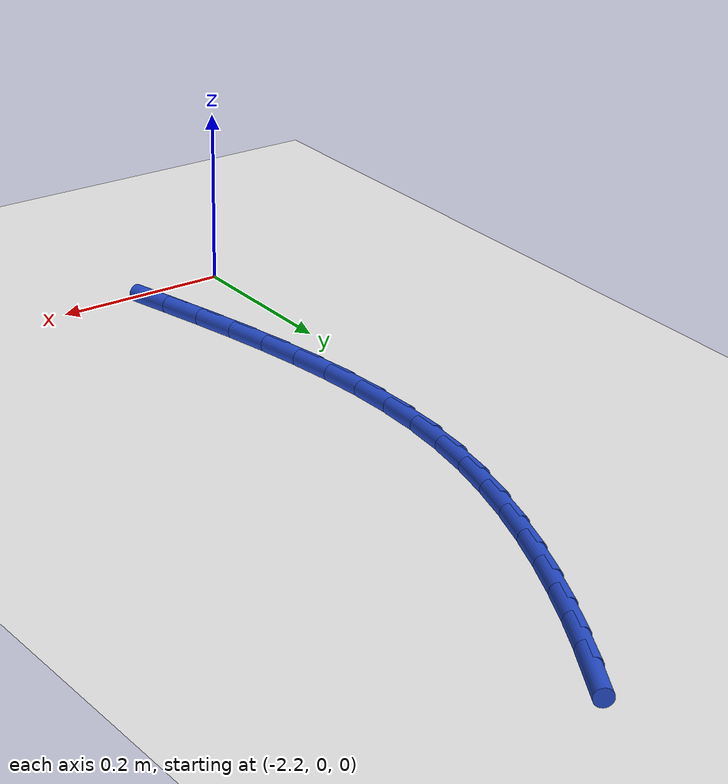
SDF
<sdf version="1.6">
 <world name="default">
  <model name="ground_plane">
   <static>1</static>
   <link name="link">
    <collision name="collision">
     <geometry><plane><normal>0 0 1</normal><size>100 100</size></plane></geometry>
     <surface><friction><ode><mu>100</mu><mu2>50</mu2></ode></friction></surface>
    </collision>
    <visual name="visual">
     <cast_shadows>0</cast_shadows>
     <geometry><plane><normal>0 0 1</normal><size>100 100</size></plane></geometry>
     <material>
      <script><uri>file://media/materials/scripts/gazebo.material</uri><name>Gazebo/WhiteGlow</name></script>
     </material>
    </visual>
   </link>
  </model>
  <model name="line">
   <link name="link_57">
    <pose>-1.9884132734650395 0.9450249430834553 0.01 0 1.57 1.0767185622705102</pose>
    <collision name="collision">
     <geometry><cylinder><radius>0.01</radius><length>0.08</length></cylinder></geometry>
    </collision>
    <visual name="visual">
     <material>
      <script><name>Gazebo/Blue</name><uri>file://media/materials/scripts/gazebo.material</uri></script>
     </material>
     <geometry><cylinder><radius>0.01</radius><length>0.08</length></cylinder></geometry>
    </visual>
   </link>
   <link name="link_58">
    <pose>-2.0123396323150073 0.9006047919943416 0.01 0 1.57 1.1065300352826224</pose>
    <collision name="collision">
     <geometry><cylinder><radius>0.01</radius><length>0.08</length></cylinder></geometry>
    </collision>
    <visual name="visual">
     <material>
      <script><name>Gazebo/Blue</name><uri>file://media/materials/scripts/gazebo.material</uri></script>
     </material>
     <geometry><cylinder><radius>0.01</radius><length>0.08</length></cylinder></geometry>
    </visual>
   </link>
   <link name="link_59">
    <pose>-2.0352388207915904 0.8548771641449224 0.01 0 1.57 1.134573228270334</pose>
    <collision name="collision">
     <geometry><cylinder><radius>0.01</radius><length>0.08</length></cylinder></geometry>
    </collision>
    <visual name="visual">
     <material>
      <script><name>Gazebo/Blue</name><uri>file://media/materials/scripts/gazebo.material</uri></script>
     </material>
     <geometry><cylinder><radius>0.01</radius><length>0.08</length></cylinder></geometry>
    </visual>
   </link>
   <link name="link_60">
    <pose>-2.05716096362098 0.807851568998694 0.01 0 1.57 1.166539977617122</pose>
    <collision name="collision">
     <geometry><cylinder><radius>0.01</radius><length>0.08</length></cylinder></geometry>
    </collision>
    <visual name="visual">
     <material>
      <script><name>Gazebo/Blue</name><uri>file://media/materials/scripts/gazebo.material</uri></script>
     </material>
     <geometry><cylinder><radius>0.01</radius><length>0.08</length></cylinder></geometry>
    </visual>
   </link>
   <link name="link_61">
    <pose>-2.077762679846535 0.7596964076877841 0.01 0 1.57 1.2031058721673062</pose>
    <collision name="collision">
     <geometry><cylinder><radius>0.01</radius><length>0.08</length></cylinder></geometry>
    </collision>
    <visual name="visual">
     <material>
      <script><name>Gazebo/Blue</name><uri>file://media/materials/scripts/gazebo.material</uri></script>
     </material>
     <geometry><cylinder><radius>0.01</radius><length>0.08</length></cylinder></geometry>
    </visual>
   </link>
   <link name="link_62">
    <pose>-2.0966794152020474 0.7105886308078588 0.01 0 1.57 1.244732987011108</pose>
    <collision name="collision">
     <geometry><cylinder><radius>0.01</radius><length>0.08</length></cylinder></geometry>
    </collision>
    <visual name="visual">
     <material>
      <script><name>Gazebo/Blue</name><uri>file://media/materials/scripts/gazebo.material</uri></script>
     </material>
     <geometry><cylinder><radius>0.01</radius><length>0.08</length></cylinder></geometry>
    </visual>
   </link>
   <link name="link_63">
    <pose>-2.113546615421306 0.6607051889545855 0.01 0 1.57 1.2919539699727254</pose>
    <collision name="collision">
     <geometry><cylinder><radius>0.01</radius><length>0.08</length></cylinder></geometry>
    </collision>
    <visual name="visual">
     <material>
      <script><name>Gazebo/Blue</name><uri>file://media/materials/scripts/gazebo.material</uri></script>
     </material>
     <geometry><cylinder><radius>0.01</radius><length>0.08</length></cylinder></geometry>
    </visual>
   </link>
   <link name="link_64">
    <pose>-2.127999726238101 0.6102230327236301 0.01 0 1.57 1.3453518433506855</pose>
    <collision name="collision">
     <geometry><cylinder><radius>0.01</radius><length>0.08</length></cylinder></geometry>
    </collision>
    <visual name="visual">
     <material>
      <script><name>Gazebo/Blue</name><uri>file://media/materials/scripts/gazebo.material</uri></script>
     </material>
     <geometry><cylinder><radius>0.01</radius><length>0.08</length></cylinder></geometry>
    </visual>
   </link>
   <link name="link_65">
    <pose>-2.139674193386225 0.5593191127106597 0.01 0 1.57 1.4055243800006232</pose>
    <collision name="collision">
     <geometry><cylinder><radius>0.01</radius><length>0.08</length></cylinder></geometry>
    </collision>
    <visual name="visual">
     <material>
      <script><name>Gazebo/Blue</name><uri>file://media/materials/scripts/gazebo.material</uri></script>
     </material>
     <geometry><cylinder><radius>0.01</radius><length>0.08</length></cylinder></geometry>
    </visual>
   </link>
   <link name="link_66">
    <pose>-2.148205462599466 0.5081703795113407 0.01 0 1.57 1.4728889256258975</pose>
    <collision name="collision">
     <geometry><cylinder><radius>0.01</radius><length>0.08</length></cylinder></geometry>
    </collision>
    <visual name="visual">
     <material>
      <script><name>Gazebo/Blue</name><uri>file://media/materials/scripts/gazebo.material</uri></script>
     </material>
     <geometry><cylinder><radius>0.01</radius><length>0.08</length></cylinder></geometry>
    </visual>
   </link>
   <link name="link_67">
    <pose>-2.1532362039150708 0.45695202099705917 0.01 0 1.57 1.541915040390049</pose>
    <collision name="collision">
     <geometry><cylinder><radius>0.01</radius><length>0.08</length></cylinder></geometry>
    </collision>
    <visual name="visual">
     <material>
      <script><name>Gazebo/Blue</name><uri>file://media/materials/scripts/gazebo.material</uri></script>
     </material>
     <geometry><cylinder><radius>0.01</radius><length>0.08</length></cylinder></geometry>
    </visual>
   </link>
   <link name="link_68">
    <pose>-2.154714973984759 0.4057645889492517 0.01 0 1.57 -1.5373398081538736</pose>
    <collision name="collision">
     <geometry><cylinder><radius>0.01</radius><length>0.08</length></cylinder></geometry>
    </collision>
    <visual name="visual">
     <material>
      <script><name>Gazebo/Blue</name><uri>file://media/materials/scripts/gazebo.material</uri></script>
     </material>
     <geometry><cylinder><radius>0.01</radius><length>0.08</length></cylinder></geometry>
    </visual>
   </link>
   <link name="link_69">
    <pose>-2.153002813381531 0.35460798940156985 0.01 0 1.57 -1.4827661530690768</pose>
    <collision name="collision">
     <geometry><cylinder><radius>0.01</radius><length>0.08</length></cylinder></geometry>
    </collision>
    <visual name="visual">
     <material>
      <script><name>Gazebo/Blue</name><uri>file://media/materials/scripts/gazebo.material</uri></script>
     </material>
     <geometry><cylinder><radius>0.01</radius><length>0.08</length></cylinder></geometry>
    </visual>
   </link>
   <link name="link_70">
    <pose>-2.1484899056481317 0.30347501752629247 0.01 0 1.57 -1.4361707752430863</pose>
    <collision name="collision">
     <geometry><cylinder><radius>0.01</radius><length>0.08</length></cylinder></geometry>
    </collision>
    <visual name="visual">
     <material>
      <script><name>Gazebo/Blue</name><uri>file://media/materials/scripts/gazebo.material</uri></script>
     </material>
     <geometry><cylinder><radius>0.01</radius><length>0.08</length></cylinder></geometry>
    </visual>
   </link>
   <link name="link_71">
    <pose>-2.141566434327305 0.25235846849569804 0.01 0 1.57 -1.3975493610285235</pose>
    <collision name="collision">
     <geometry><cylinder><radius>0.01</radius><length>0.08</length></cylinder></geometry>
    </collision>
    <visual name="visual">
     <material>
      <script><name>Gazebo/Blue</name><uri>file://media/materials/scripts/gazebo.material</uri></script>
     </material>
     <geometry><cylinder><radius>0.01</radius><length>0.08</length></cylinder></geometry>
    </visual>
   </link>
   <link name="link_72">
    <pose>-2.1326225829617957 0.20125113748206644 0.01 0 1.57 -1.3667683302339775</pose>
    <collision name="collision">
     <geometry><cylinder><radius>0.01</radius><length>0.08</length></cylinder></geometry>
    </collision>
    <visual name="visual">
     <material>
      <script><name>Gazebo/Blue</name><uri>file://media/materials/scripts/gazebo.material</uri></script>
     </material>
     <geometry><cylinder><radius>0.01</radius><length>0.08</length></cylinder></geometry>
    </visual>
   </link>
   <link name="link_73">
    <pose>-2.1220485350943483 0.15014581965767604 0.01 0 1.57 -1.3436384703742192</pose>
    <collision name="collision">
     <geometry><cylinder><radius>0.01</radius><length>0.08</length></cylinder></geometry>
    </collision>
    <visual name="visual">
     <material>
      <script><name>Gazebo/Blue</name><uri>file://media/materials/scripts/gazebo.material</uri></script>
     </material>
     <geometry><cylinder><radius>0.01</radius><length>0.08</length></cylinder></geometry>
    </visual>
   </link>
   <link name="link_74">
    <pose>-2.1102344742677084 0.09903531019480578 0.01 0 1.57 -1.3279697814138556</pose>
    <collision name="collision">
     <geometry><cylinder><radius>0.01</radius><length>0.08</length></cylinder></geometry>
    </collision>
    <visual name="visual">
     <material>
      <script><name>Gazebo/Blue</name><uri>file://media/materials/scripts/gazebo.material</uri></script>
     </material>
     <geometry><cylinder><radius>0.01</radius><length>0.08</length></cylinder></geometry>
    </visual>
   </link>
   <link name="link_75">
    <pose>-2.0975705840246195 0.04791240426573468 0.01 0 1.57 -1.3196088449746572</pose>
    <collision name="collision">
     <geometry><cylinder><radius>0.01</radius><length>0.08</length></cylinder></geometry>
    </collision>
    <visual name="visual">
     <material>
      <script><name>Gazebo/Blue</name><uri>file://media/materials/scripts/gazebo.material</uri></script>
     </material>
     <geometry><cylinder><radius>0.01</radius><length>0.08</length></cylinder></geometry>
    </visual>
   </link>
  </model>
 </world>
</sdf>
